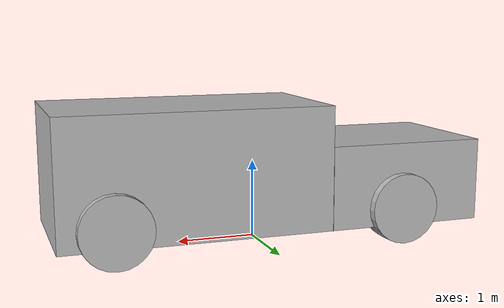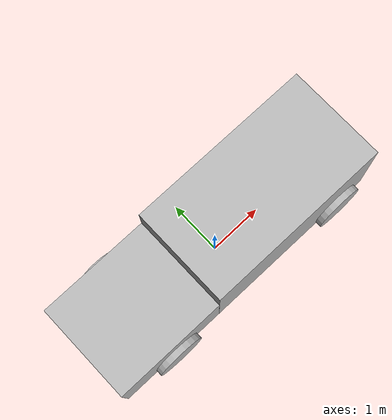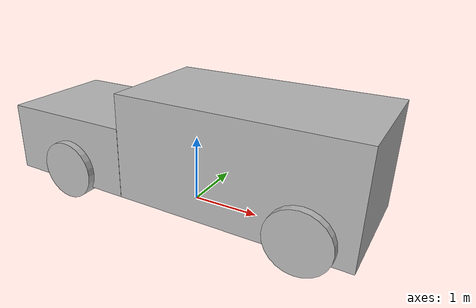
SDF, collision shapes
<!-- rosrun gazebo_ros spawn_model -model F-150 -sdf -file /home/bigb/gazebo_f150_ws/src/gazebo_f150/models/F150/model.sdf -->

<?xml version="1.0" ?>
<sdf version="1.5">
  <model name="box">
    <pose>0 0 0 0 0 0</pose>
    <static>false</static>

    <link name="chassis">
    <pose>0 0 0 0 0 0 0</pose>
      <inertial>
        <pose>0 0 0.84451 0 0 0</pose>
        <inertia>
          <ixx>904</ixx>
          <ixy>0</ixy>
          <ixz>0</ixz>
          <iyy>5584</iyy>
          <iyz>0</iyz>
          <izz>5900</izz>
        </inertia>
        <mass>2260.0</mass>
      </inertial>
      <collision name="collision_chassis_front">
        <pose>0.935 0 0.99451 0 0 0</pose>
        <geometry>
          <box>
            <size>3.370 1.80 1.56</size>
          </box>
        </geometry>
      </collision>
      <collision name="collision_chassis_back">
        <pose>-1.770 0 0.74101 0 0 0</pose>
        <geometry>
          <box>
            <size>2.035 1.80 1.053</size>
          </box>
        </geometry>
      </collision>
      <visual name="visual_chassis_base">
        <geometry>
          <mesh>
            <uri>model://F150/meshes/F150.dae</uri>
          </mesh>
        </geometry>
      </visual>
    </link>

<!-- Start Front Right Wheel -->
    <link name="front_right_wheel">
    <pose>1.953 -0.8665 0.445 0 0 0</pose>
      <inertial>
        <inertia>
          <ixx>2</ixx>
          <ixy>0</ixy>
          <ixz>0</ixz>
          <iyy>3.46</iyy>
          <iyz>0</iyz>
          <izz>2</izz>
        </inertia>
        <mass>35.0</mass>
      </inertial>

      <collision name="front_right_wheel_collision">
      <pose>0 0 0 1.57079633 0 0</pose>
        <geometry>
          <cylinder>
            <radius>0.445</radius>
            <length>0.297</length>
          </cylinder>
        </geometry>
        <surface>
          <friction>
            <ode>
              <mu>0.7</mu>
              <mu2>0.7</mu2>
            </ode>
          </friction>
        </surface>
      </collision>

      <visual name="front_right_wheel_visual">
      <pose>0 0 0 0 0 0</pose>
        <geometry>
          <mesh>
            <uri>model://F150/meshes/wheel.dae</uri>
          </mesh>
        </geometry>
      </visual>
    </link>

    <joint name="front_right_wheel_joint" type="revolute2">
      <parent>chassis</parent>
      <child>front_right_wheel</child>
      <pose>0 0 0 0 0 0</pose>
      <axis>
        <xyz>0 0 1</xyz>
      </axis>
      <axis2>
        <xyz>0 1 0</xyz>
      </axis2>
    </joint>
<!-- End Front Right Wheel -->

<!-- Front Left Wheel -->
    <link name="front_left_wheel">
    <pose>1.953 0.8665 0.445 0 0 0</pose>
      <inertial>
        <inertia>
          <ixx>2</ixx>
          <ixy>0</ixy>
          <ixz>0</ixz>
          <iyy>3.46</iyy>
          <iyz>0</iyz>
          <izz>2</izz>
        </inertia>
        <mass>35.0</mass>
      </inertial>

      <collision name="front_left_wheel_collision">
      <pose>0 0 0 1.57079633 0 0</pose>
        <geometry>
          <cylinder>
            <radius>0.445</radius>
            <length>0.297</length>
          </cylinder>
        </geometry>
        <surface>
          <friction>
            <ode>
              <mu>0.7</mu>
              <mu2>0.7</mu2>
            </ode>
          </friction>
        </surface>
      </collision>

      <visual name="front_left_wheel_visual">
      <pose>0 0 0 0 0 3.1416</pose>
        <geometry>
          <mesh>
            <uri>model://F150/meshes/wheel.dae</uri>
          </mesh>
        </geometry>
      </visual>
    </link>

    <joint name="front_left_wheel_joint" type="revolute2">
      <parent>chassis</parent>
      <child>front_left_wheel</child>
      <pose>0 0 0 0 0 0</pose>
      <axis>
        <xyz>0 0 1</xyz>
      </axis>
      <axis2>
        <xyz>0 1 0</xyz>
      </axis2>
    </joint>
<!-- End Front Left Wheel -->

<!-- Start Rear Right Wheel -->
    <link name="rear_right_wheel">
    <pose>-1.698 -0.8665 0.445 0 0 0</pose>
      <inertial>
        <inertia>
          <ixx>2</ixx>
          <ixy>0</ixy>
          <ixz>0</ixz>
          <iyy>3.46</iyy>
          <iyz>0</iyz>
          <izz>2</izz>
        </inertia>
        <mass>35.0</mass>
      </inertial>

      <collision name="rear_right_wheel_collision">
      <pose>0 0 0 1.57079633 0 0</pose>
        <geometry>
          <cylinder>
            <radius>0.445</radius>
            <length>0.297</length>
          </cylinder>
        </geometry>
        <surface>
          <friction>
            <ode>
              <mu>0.7</mu>
              <mu2>0.7</mu2>
            </ode>
          </friction>
        </surface>
      </collision>

      <visual name="rear_right_wheel_visual">
      <pose>0 0 0 0 0 0</pose>
        <geometry>
          <mesh>
            <uri>model://F150/meshes/wheel.dae</uri>
          </mesh>
        </geometry>
      </visual>
    </link>

    <joint name="rear_right_wheel_joint" type="revolute">
      <parent>chassis</parent>
      <child>rear_right_wheel</child>
      <pose>0 0 0 0 0 0</pose>
      <axis>
        <xyz>0 1 0</xyz>
      </axis>
    </joint>
<!-- End Rear Right Wheel -->

<!-- Start Rear Left Wheel -->
    <link name="rear_left_wheel">
    <pose>-1.698 0.8665 0.445 0 0 0</pose>
      <inertial>
        <inertia>
          <ixx>2</ixx>
          <ixy>0</ixy>
          <ixz>0</ixz>
          <iyy>3.46</iyy>
          <iyz>0</iyz>
          <izz>2</izz>
        </inertia>
        <mass>35.0</mass>
      </inertial>

      <collision name="rear_left_wheel_collision">
      <pose>0 0 0 1.57079633 0 0</pose>
        <geometry>
          <cylinder>
            <radius>0.445</radius>
            <length>0.297</length>
          </cylinder>
        </geometry>
        <surface>
          <friction>
            <ode>
              <mu>0.7</mu>
              <mu2>0.7</mu2>
            </ode>
          </friction>
        </surface>
      </collision>

      <visual name="rear_left_wheel_visual">
      <pose>0 0 0 0 0 3.1416</pose>
        <geometry>
          <mesh>
            <uri>model://F150/meshes/wheel.dae</uri>
          </mesh>
        </geometry>
      </visual>
    </link>

    <joint name="rear_left_wheel_joint" type="revolute">
      <parent>chassis</parent>
      <child>rear_left_wheel</child>
      <pose>0 0 0 0 0 0</pose>
      <axis>
        <xyz>0 1 0</xyz>
      </axis>
    </joint>
<!-- End Rear Left Wheel -->
<plugin name="ackermann_controller" filename="libgazebo_f150.so">
  <alwaysOn>true</alwaysOn>
  <update>100</update>
  <updateRate>100.0</updateRate>

  <steer_right>front_right_wheel_joint</steer_right>
  <steer_left>front_left_wheel_joint</steer_left>

  <steer_P>1250</steer_P>
  <steer_I>10</steer_I>
  <steer_D>300</steer_D>
  <steer_LIM>150</steer_LIM>
  <vel_P>200</vel_P>
  <vel_I>1</vel_I>
  <vel_D>1</vel_D>
  <vel_LIM>25</vel_LIM>

  <max_steering>60</max_steering>
  <wheelbase>3.651</wheelbase>
  <wheelspread>1.733</wheelspread>
</plugin>

<plugin name="ground_truth" filename="libgazebo_ros_p3d.so">
  <frameName>world</frameName>
  <bodyName>chassis</bodyName>
  <topicName>f150</topicName>
  <updateRate>30.0</updateRate>
</plugin>

</model>
</sdf>
